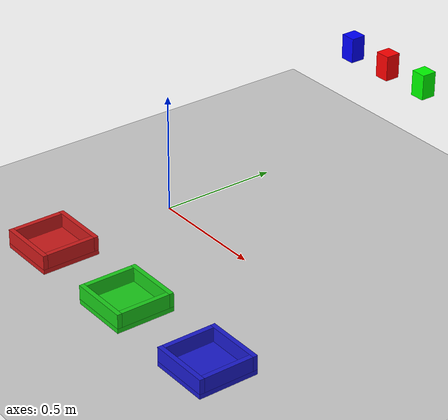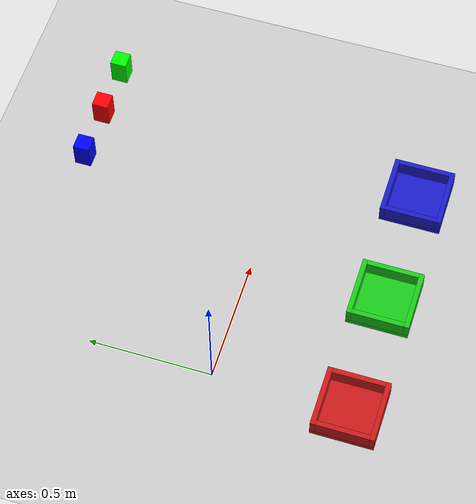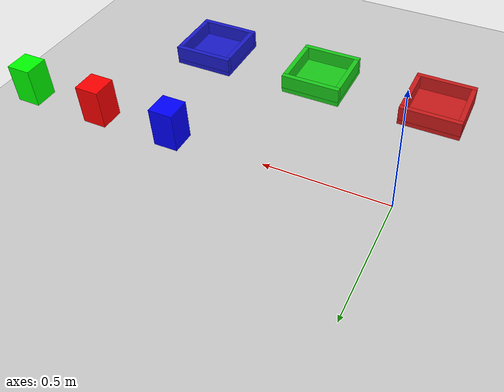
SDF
<sdf version="1.9">
 <world name="empty_world">
  <gravity>0 0 -9.8</gravity>
  <magnetic_field>6e-06 2.3e-05 -4.2e-05</magnetic_field>
  <atmosphere type="adiabatic"/>
  <physics type="ode">
   <max_step_size>0.001</max_step_size>
   <real_time_factor>1</real_time_factor>
   <real_time_update_rate>1000</real_time_update_rate>
  </physics>
  <scene><ambient>0.4 0.4 0.4 1</ambient><background>0.7 0.7 0.7 1</background><shadows>true</shadows></scene>
  <model name="red_box">
   <static>false</static>
   <link name="red_link">
    <pose>0.6 0.6 0.70 0 0 0</pose>
    <collision name="red_collision"><geometry><box><size>0.06 0.06 0.1</size></box></geometry></collision>
    <visual name="red_visual">
     <geometry><box><size>0.06 0.06 0.1</size></box></geometry>
     <material><ambient>1 0 0 1</ambient><diffuse>1 0 0 1</diffuse></material>
    </visual>
   </link>
  </model>
  <model name="green_box">
   <static>false</static>
   <link name="green_link">
    <pose>0.8 0.6 0.70 0 0 0</pose>
    <collision name="green_collision"><geometry><box><size>0.06 0.06 0.1</size></box></geometry></collision>
    <visual name="green_visual">
     <geometry><box><size>0.06 0.06 0.1</size></box></geometry>
     <material><ambient>0 1 0 1</ambient><diffuse>0 1 0 1</diffuse></material>
    </visual>
   </link>
  </model>
  <model name="blue_box">
   <static>false</static>
   <link name="blue_link">
    <pose>0.4 0.6 0.70 0 0 0</pose>
    <collision name="blue_collision"><geometry><box><size>0.06 0.06 0.1</size></box></geometry></collision>
    <visual name="blue_visual">
     <geometry><box><size>0.06 0.06 0.1</size></box></geometry>
     <material><ambient>0 0 1 1</ambient><diffuse>0 0 1 1</diffuse></material>
    </visual>
   </link>
  </model>
  <model name="red_bin">
   <static>true</static>
   <pose>0.0 -0.55 0.0 0 0 0</pose>
   <link name="link">
    <visual name="floor">
     <pose>0 0 0.01 0 0 0</pose>
     <geometry><box><size>0.25 0.25 0.02</size></box></geometry>
     <material><ambient>0.8 0.1 0.1 1</ambient><diffuse>0.8 0.1 0.1 1</diffuse></material>
    </visual>
    <collision name="floor">
     <pose>0 0 0.01 0 0 0</pose>
     <geometry><box><size>0.25 0.25 0.02</size></box></geometry>
    </collision>
    <visual name="wall_front">
     <pose>0 0.115 0.05 0 0 0</pose>
     <geometry><box><size>0.25 0.02 0.06</size></box></geometry>
     <material><ambient>0.8 0.1 0.1 1</ambient><diffuse>0.8 0.1 0.1 1</diffuse></material>
    </visual>
    <collision name="wall_front">
     <pose>0 0.115 0.05 0 0 0</pose>
     <geometry><box><size>0.25 0.02 0.06</size></box></geometry>
    </collision>
    <visual name="wall_back">
     <pose>0 -0.115 0.05 0 0 0</pose>
     <geometry><box><size>0.25 0.02 0.06</size></box></geometry>
     <material><ambient>0.8 0.1 0.1 1</ambient><diffuse>0.8 0.1 0.1 1</diffuse></material>
    </visual>
    <collision name="wall_back">
     <pose>0 -0.115 0.05 0 0 0</pose>
     <geometry><box><size>0.25 0.02 0.06</size></box></geometry>
    </collision>
    <visual name="wall_left">
     <pose>-0.115 0 0.05 0 0 0</pose>
     <geometry><box><size>0.02 0.21 0.06</size></box></geometry>
     <material><ambient>0.8 0.1 0.1 1</ambient><diffuse>0.8 0.1 0.1 1</diffuse></material>
    </visual>
    <collision name="wall_left">
     <pose>-0.115 0 0.05 0 0 0</pose>
     <geometry><box><size>0.02 0.21 0.06</size></box></geometry>
    </collision>
    <visual name="wall_right">
     <pose>0.115 0 0.05 0 0 0</pose>
     <geometry><box><size>0.02 0.21 0.06</size></box></geometry>
     <material><ambient>0.8 0.1 0.1 1</ambient><diffuse>0.8 0.1 0.1 1</diffuse></material>
    </visual>
    <collision name="wall_right">
     <pose>0.115 0 0.05 0 0 0</pose>
     <geometry><box><size>0.02 0.21 0.06</size></box></geometry>
    </collision>
   </link>
  </model>
  <model name="green_bin">
   <static>true</static>
   <pose>0.5 -0.55 0.0 0 0 0</pose>
   <link name="link">
    <visual name="floor">
     <pose>0 0 0.01 0 0 0</pose>
     <geometry><box><size>0.25 0.25 0.02</size></box></geometry>
     <material><ambient>0.1 0.8 0.1 1</ambient><diffuse>0.1 0.8 0.1 1</diffuse></material>
    </visual>
    <collision name="floor">
     <pose>0 0 0.01 0 0 0</pose>
     <geometry><box><size>0.25 0.25 0.02</size></box></geometry>
    </collision>
    <visual name="wall_front">
     <pose>0 0.115 0.05 0 0 0</pose>
     <geometry><box><size>0.25 0.02 0.06</size></box></geometry>
     <material><ambient>0.1 0.8 0.1 1</ambient><diffuse>0.1 0.8 0.1 1</diffuse></material>
    </visual>
    <collision name="wall_front">
     <pose>0 0.115 0.05 0 0 0</pose>
     <geometry><box><size>0.25 0.02 0.06</size></box></geometry>
    </collision>
    <visual name="wall_back">
     <pose>0 -0.115 0.05 0 0 0</pose>
     <geometry><box><size>0.25 0.02 0.06</size></box></geometry>
     <material><ambient>0.1 0.8 0.1 1</ambient><diffuse>0.1 0.8 0.1 1</diffuse></material>
    </visual>
    <collision name="wall_back">
     <pose>0 -0.115 0.05 0 0 0</pose>
     <geometry><box><size>0.25 0.02 0.06</size></box></geometry>
    </collision>
    <visual name="wall_left">
     <pose>-0.115 0 0.05 0 0 0</pose>
     <geometry><box><size>0.02 0.21 0.06</size></box></geometry>
     <material><ambient>0.1 0.8 0.1 1</ambient><diffuse>0.1 0.8 0.1 1</diffuse></material>
    </visual>
    <collision name="wall_left">
     <pose>-0.115 0 0.05 0 0 0</pose>
     <geometry><box><size>0.02 0.21 0.06</size></box></geometry>
    </collision>
    <visual name="wall_right">
     <pose>0.115 0 0.05 0 0 0</pose>
     <geometry><box><size>0.02 0.21 0.06</size></box></geometry>
     <material><ambient>0.1 0.8 0.1 1</ambient><diffuse>0.1 0.8 0.1 1</diffuse></material>
    </visual>
    <collision name="wall_right">
     <pose>0.115 0 0.05 0 0 0</pose>
     <geometry><box><size>0.02 0.21 0.06</size></box></geometry>
    </collision>
   </link>
  </model>
  <model name="blue_bin">
   <static>true</static>
   <pose>1.0 -0.55 0.0 0 0 0</pose>
   <link name="link">
    <visual name="floor">
     <pose>0 0 0.01 0 0 0</pose>
     <geometry><box><size>0.25 0.25 0.02</size></box></geometry>
     <material><ambient>0.1 0.1 0.8 1</ambient><diffuse>0.1 0.1 0.8 1</diffuse></material>
    </visual>
    <collision name="floor">
     <pose>0 0 0.01 0 0 0</pose>
     <geometry><box><size>0.25 0.25 0.02</size></box></geometry>
    </collision>
    <visual name="wall_front">
     <pose>0 0.115 0.05 0 0 0</pose>
     <geometry><box><size>0.25 0.02 0.06</size></box></geometry>
     <material><ambient>0.1 0.1 0.8 1</ambient><diffuse>0.1 0.1 0.8 1</diffuse></material>
    </visual>
    <collision name="wall_front">
     <pose>0 0.115 0.05 0 0 0</pose>
     <geometry><box><size>0.25 0.02 0.06</size></box></geometry>
    </collision>
    <visual name="wall_back">
     <pose>0 -0.115 0.05 0 0 0</pose>
     <geometry><box><size>0.25 0.02 0.06</size></box></geometry>
     <material><ambient>0.1 0.1 0.8 1</ambient><diffuse>0.1 0.1 0.8 1</diffuse></material>
    </visual>
    <collision name="wall_back">
     <pose>0 -0.115 0.05 0 0 0</pose>
     <geometry><box><size>0.25 0.02 0.06</size></box></geometry>
    </collision>
    <visual name="wall_left">
     <pose>-0.115 0 0.05 0 0 0</pose>
     <geometry><box><size>0.02 0.21 0.06</size></box></geometry>
     <material><ambient>0.1 0.1 0.8 1</ambient><diffuse>0.1 0.1 0.8 1</diffuse></material>
    </visual>
    <collision name="wall_left">
     <pose>-0.115 0 0.05 0 0 0</pose>
     <geometry><box><size>0.02 0.21 0.06</size></box></geometry>
    </collision>
    <visual name="wall_right">
     <pose>0.115 0 0.05 0 0 0</pose>
     <geometry><box><size>0.02 0.21 0.06</size></box></geometry>
     <material><ambient>0.1 0.1 0.8 1</ambient><diffuse>0.1 0.1 0.8 1</diffuse></material>
    </visual>
    <collision name="wall_right">
     <pose>0.115 0 0.05 0 0 0</pose>
     <geometry><box><size>0.02 0.21 0.06</size></box></geometry>
    </collision>
   </link>
  </model>
  <model name="ground_plane">
   <static>true</static>
   <link name="link">
    <collision name="collision">
     <geometry><plane><normal>0 0 1</normal><size>1 1</size></plane></geometry>
    </collision>
    <visual name="visual">
     <geometry><plane><normal>0 0 1</normal><size>100 100</size></plane></geometry>
     <material>
      <ambient>0.8 0.8 0.8 1</ambient>
      <diffuse>0.8 0.8 0.8 1</diffuse>
      <specular>0.8 0.8 0.8 1</specular>
     </material>
    </visual>
    <inertial>
     <mass>1</mass>
     <inertia><ixx>1</ixx><ixy>0</ixy><ixz>0</ixz><iyy>1</iyy><iyz>0</iyz><izz>1</izz></inertia>
    </inertial>
   </link>
  </model>
  <light name="sun" type="directional">
   <pose>0 0 10 0 -0 0</pose>
   <intensity>1</intensity>
   <direction>-0.5 0.1 -0.9</direction>
   <diffuse>0.8 0.8 0.8 1</diffuse>
   <specular>0.2 0.2 0.2 1</specular>
   <attenuation>
    <range>1000</range>
    <linear>0.01</linear>
    <constant>0.90000000000000002</constant>
    <quadratic>0.001</quadratic>
   </attenuation>
   <spot><inner_angle>0</inner_angle><outer_angle>0</outer_angle><falloff>0</falloff></spot>
  </light>
 </world>
</sdf>
